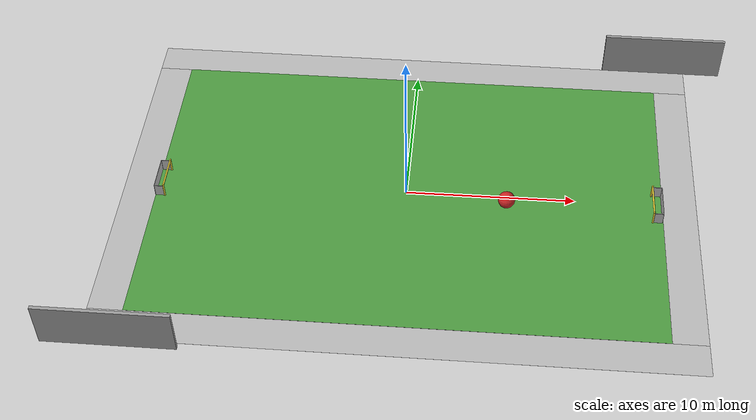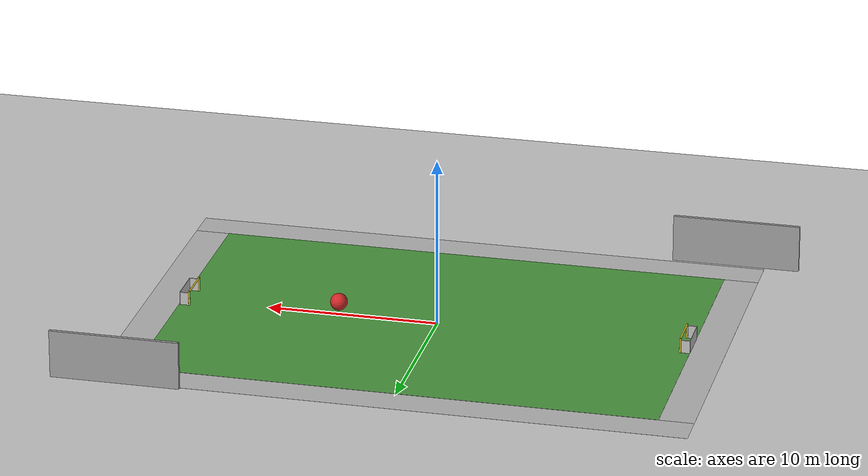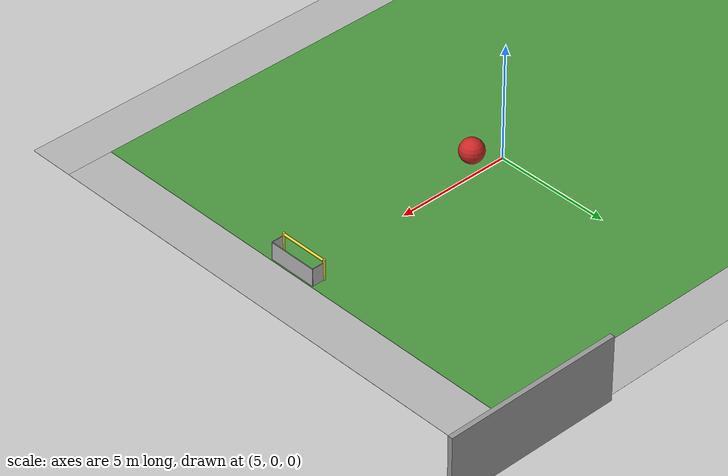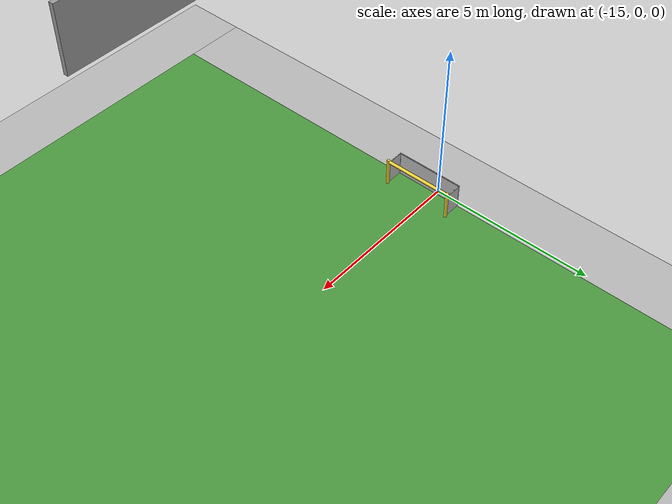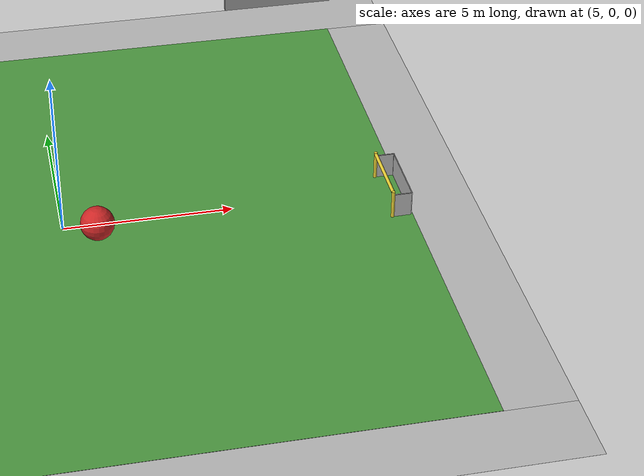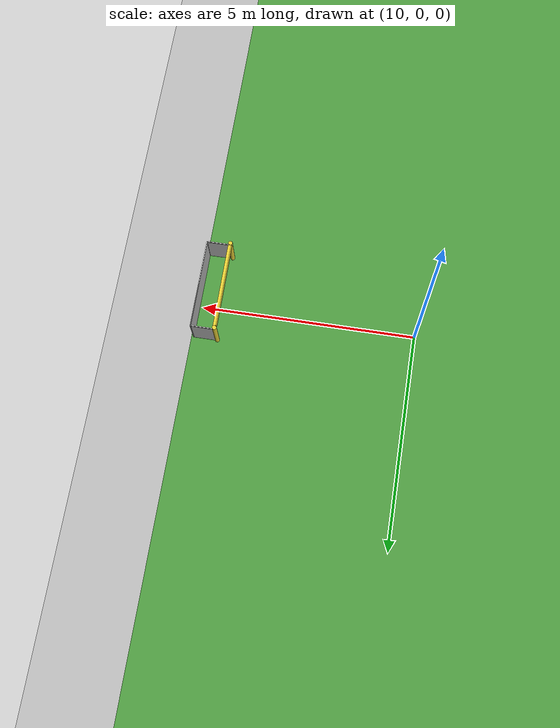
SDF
<sdf version="1.6">
 <world name="default">
  <light name="sun" type="directional">
   <pose>0 0 10 0 -0 0</pose>
   <diffuse>0.8 0.8 0.8 1</diffuse>
   <specular>0.2 0.2 0.2 1</specular>
   <attenuation>
    <range>1000</range>
    <constant>0.9</constant>
    <linear>0.01</linear>
    <quadratic>0.001</quadratic>
   </attenuation>
   <direction>-0.5 0.1 -0.9</direction>
  </light>
  <model name="ground_plane">
   <static>1</static>
   <link name="link">
    <collision name="collision">
     <geometry><plane><normal>0 0 1</normal><size>1000 1000</size></plane></geometry>
     <surface><friction><ode><mu>100</mu><mu2>50</mu2></ode></friction></surface>
    </collision>
    <visual name="visual">
     <cast_shadows>0</cast_shadows>
     <geometry><plane><normal>0 0 1</normal><size>100 100</size></plane></geometry>
     <material>
      <script><uri>file://media/materials/scripts/gazebo.material</uri><name>Gazebo/Grey</name></script>
     </material>
    </visual>
   </link>
  </model>
  <physics name="default_physics" default="0" type="ode">
   <ode>
    <solver>
     <type>quick</type>
     <iters>10</iters>
     <sor>1.3</sor>
     <use_dynamic_moi_rescaling>0</use_dynamic_moi_rescaling>
    </solver>
    <constraints>
     <cfm>0</cfm>
     <erp>0.2</erp>
     <contact_max_correcting_vel>100</contact_max_correcting_vel>
     <contact_surface_layer>0.001</contact_surface_layer>
    </constraints>
   </ode>
   <max_step_size>0.004</max_step_size>
   <real_time_factor>1</real_time_factor>
   <real_time_update_rate>250</real_time_update_rate>
  </physics>
  <gravity>0 0 -9.8066</gravity>
  <magnetic_field>6e-06 2.3e-05 -4.2e-05</magnetic_field>
  <atmosphere type="adiabatic"/>
  <scene><ambient>0.4 0.4 0.4 1</ambient><background>0.7 0.7 0.7 1</background><shadows>1</shadows></scene>
  <spherical_coordinates>
   <surface_model>EARTH_WGS84</surface_model>
   <latitude_deg>0</latitude_deg>
   <longitude_deg>0</longitude_deg>
   <elevation>0</elevation>
   <heading_deg>0</heading_deg>
  </spherical_coordinates>
  <model name="robocup_3d_field">
   <static>1</static>
   <link name="field">
    <pose>0 0 0.01 0 -0 0</pose>
    <collision name="collision">
     <geometry><plane><normal>0 0 1</normal><size>30 20</size></plane></geometry>
     <surface><friction><ode><mu>100</mu><mu2>50</mu2></ode></friction></surface>
    </collision>
    <visual name="base1">
     <pose>0 11 0.001 0 -0 0</pose>
     <cast_shadows>0</cast_shadows>
     <geometry><plane><normal>0 0 1</normal><size>34 2</size></plane></geometry>
     <material>
      <script>
       <uri>model://robocup_3Dsim_field/materials/scripts/</uri>
       <uri>model://robocup_3Dsim_field/materials/textures/</uri>
       <name>RoboCup/FieldBorder</name>
      </script>
     </material>
    </visual>
    <visual name="base2">
     <pose>0 -11 0.001 0 -0 0</pose>
     <cast_shadows>0</cast_shadows>
     <geometry><plane><normal>0 0 1</normal><size>34 2</size></plane></geometry>
     <material>
      <script>
       <uri>model://robocup_3Dsim_field/materials/scripts/</uri>
       <uri>model://robocup_3Dsim_field/materials/textures/</uri>
       <name>RoboCup/FieldBorder</name>
      </script>
     </material>
    </visual>
    <visual name="base3">
     <pose>16 0 0.001 0 -0 0</pose>
     <cast_shadows>0</cast_shadows>
     <geometry><plane><normal>0 0 1</normal><size>2 20</size></plane></geometry>
     <material>
      <script>
       <uri>model://robocup_3Dsim_field/materials/scripts/</uri>
       <uri>model://robocup_3Dsim_field/materials/textures/</uri>
       <name>RoboCup/FieldBorder</name>
      </script>
     </material>
    </visual>
    <visual name="base4">
     <pose>-16 0 0.001 0 -0 0</pose>
     <cast_shadows>0</cast_shadows>
     <geometry><plane><normal>0 0 1</normal><size>2 20</size></plane></geometry>
     <material>
      <script>
       <uri>model://robocup_3Dsim_field/materials/scripts/</uri>
       <uri>model://robocup_3Dsim_field/materials/textures/</uri>
       <name>RoboCup/FieldBorder</name>
      </script>
     </material>
    </visual>
    <visual name="carpet">
     <cast_shadows>0</cast_shadows>
     <geometry><plane><normal>0 0 1</normal><size>30 20</size></plane></geometry>
     <material>
      <script>
       <uri>model://robocup_3Dsim_field/materials/scripts/</uri>
       <uri>model://robocup_3Dsim_field/materials/textures/</uri>
       <name>RoboCup/Grass</name>
      </script>
     </material>
    </visual>
   </link>
   <pose>0.142374 -0.07827 0 0 -0 0</pose>
  </model>
  <model name="robocup_3d_goal">
   <static>1</static>
   <link name="left_post">
    <pose>0 1.05 0.45 0 -0 0</pose>
    <collision name="collision">
     <geometry><cylinder><radius>0.05</radius><length>0.9</length></cylinder></geometry>
    </collision>
    <visual name="visual">
     <geometry><cylinder><radius>0.05</radius><length>0.9</length></cylinder></geometry>
     <material>
      <script><uri>file://media/materials/scripts/gazebo.material</uri><name>Gazebo/ZincYellow</name></script>
     </material>
    </visual>
   </link>
   <link name="left_support_horiz_lower">
    <pose>0.3 1.05 0.01 0 -0 0</pose>
    <collision name="collision"><geometry><box><size>0.5 0.02 0.02</size></box></geometry></collision>
    <visual name="visual">
     <geometry><box><size>0.5 0.02 0.02</size></box></geometry>
     <material>
      <script><uri>file://media/materials/scripts/gazebo.material</uri><name>Gazebo/White</name></script>
     </material>
    </visual>
   </link>
   <link name="left_support_horiz_upper">
    <pose>0.3 1.05 0.79 0 -0 0</pose>
    <collision name="collision"><geometry><box><size>0.5 0.02 0.02</size></box></geometry></collision>
    <visual name="visual">
     <geometry><box><size>0.5 0.02 0.02</size></box></geometry>
     <material>
      <script><uri>file://media/materials/scripts/gazebo.material</uri><name>Gazebo/White</name></script>
     </material>
    </visual>
   </link>
   <link name="left_support_vertical">
    <pose>0.56 1.05 0.4 3.14159 1.57079 3.14159</pose>
    <collision name="collision"><geometry><box><size>0.8 0.02 0.02</size></box></geometry></collision>
    <visual name="visual">
     <geometry><box><size>0.8 0.02 0.02</size></box></geometry>
     <material>
      <script><uri>file://media/materials/scripts/gazebo.material</uri><name>Gazebo/White</name></script>
     </material>
    </visual>
   </link>
   <link name="right_support_horiz_lower">
    <pose>0.3 -1.05 0.01 0 -0 0</pose>
    <collision name="collision"><geometry><box><size>0.5 0.02 0.02</size></box></geometry></collision>
    <visual name="visual">
     <geometry><box><size>0.5 0.02 0.02</size></box></geometry>
     <material>
      <script><uri>file://media/materials/scripts/gazebo.material</uri><name>Gazebo/White</name></script>
     </material>
    </visual>
   </link>
   <link name="right_support_horiz_upper">
    <pose>0.3 -1.05 0.79 0 -0 0</pose>
    <collision name="collision"><geometry><box><size>0.5 0.02 0.02</size></box></geometry></collision>
    <visual name="visual">
     <geometry><box><size>0.5 0.02 0.02</size></box></geometry>
     <material>
      <script><uri>file://media/materials/scripts/gazebo.material</uri><name>Gazebo/White</name></script>
     </material>
    </visual>
   </link>
   <link name="right_support_vertical">
    <pose>0.56 -1.05 0.4 3.14159 1.57079 3.14159</pose>
    <collision name="collision"><geometry><box><size>0.8 0.02 0.02</size></box></geometry></collision>
    <visual name="visual">
     <geometry><box><size>0.8 0.02 0.02</size></box></geometry>
     <material>
      <script><uri>file://media/materials/scripts/gazebo.material</uri><name>Gazebo/White</name></script>
     </material>
    </visual>
   </link>
   <link name="center_support_horiz_lower">
    <pose>0.56 0 0.01 3.14159 1.57079 3.14159</pose>
    <collision name="collision"><geometry><box><size>0.02 2.08 0.02</size></box></geometry></collision>
    <visual name="visual">
     <geometry><box><size>0.02 2.08 0.02</size></box></geometry>
     <material>
      <script><uri>file://media/materials/scripts/gazebo.material</uri><name>Gazebo/White</name></script>
     </material>
    </visual>
   </link>
   <link name="center_support_horiz_upper">
    <pose>0.56 0 0.79 3.14159 1.57079 3.14159</pose>
    <collision name="collision"><geometry><box><size>0.02 2.08 0.02</size></box></geometry></collision>
    <visual name="visual">
     <geometry><box><size>0.02 2.08 0.02</size></box></geometry>
     <material>
      <script><uri>file://media/materials/scripts/gazebo.material</uri><name>Gazebo/White</name></script>
     </material>
    </visual>
   </link>
   <link name="right_post">
    <pose>0 -1.05 0.45 0 -0 0</pose>
    <collision name="collision">
     <geometry><cylinder><radius>0.05</radius><length>0.9</length></cylinder></geometry>
    </collision>
    <visual name="visual">
     <geometry><cylinder><radius>0.05</radius><length>0.9</length></cylinder></geometry>
     <material>
      <script><uri>file://media/materials/scripts/gazebo.material</uri><name>Gazebo/ZincYellow</name></script>
     </material>
    </visual>
   </link>
   <link name="crossbar">
    <pose>0 0 0.85 1.57 1.57 0</pose>
    <collision name="collision">
     <geometry><cylinder><radius>0.05</radius><length>2</length></cylinder></geometry>
    </collision>
    <visual name="visual">
     <geometry><cylinder><radius>0.05</radius><length>2</length></cylinder></geometry>
     <material>
      <script><uri>file://media/materials/scripts/gazebo.material</uri><name>Gazebo/ZincYellow</name></script>
     </material>
    </visual>
   </link>
   <link name="center_net">
    <pose>0.56 0 0.4 0 -0 0</pose>
    <collision name="collision"><geometry><box><size>0.01 2.1 0.8</size></box></geometry></collision>
    <visual name="visual">
     <geometry><box><size>0.01 2.1 0.8</size></box></geometry>
     <material>
      <script>
       <uri>model://robocup09_spl_field/materials/scripts/</uri>
       <uri>model://robocup09_spl_field/materials/textures/</uri>
       <name>RoboCup/Net</name>
      </script>
     </material>
    </visual>
   </link>
   <link name="left_net">
    <pose>0.3 1.05 0.4 0 -0 0</pose>
    <collision name="collision"><geometry><box><size>0.5 0.01 0.76</size></box></geometry></collision>
    <visual name="visual">
     <geometry><box><size>0.5 0.01 0.76</size></box></geometry>
     <material>
      <script>
       <uri>model://robocup09_spl_field/materials/scripts/</uri>
       <uri>model://robocup09_spl_field/materials/textures/</uri>
       <name>RoboCup/Net</name>
      </script>
     </material>
    </visual>
   </link>
   <link name="right_net">
    <pose>0.3 -1.05 0.4 0 -0 0</pose>
    <collision name="collision"><geometry><box><size>0.5 0.01 0.76</size></box></geometry></collision>
    <visual name="visual">
     <geometry><box><size>0.5 0.01 0.76</size></box></geometry>
     <material>
      <script>
       <uri>model://robocup09_spl_field/materials/scripts/</uri>
       <uri>model://robocup09_spl_field/materials/textures/</uri>
       <name>RoboCup/Net</name>
      </script>
     </material>
    </visual>
   </link>
   <pose>14.5259 -0.300535 0 0 -0 0</pose>
  </model>
  <model name="robocup_3d_goal_0">
   <static>1</static>
   <link name="left_post">
    <pose>0 1.05 0.45 0 -0 0</pose>
    <collision name="collision">
     <geometry><cylinder><radius>0.05</radius><length>0.9</length></cylinder></geometry>
    </collision>
    <visual name="visual">
     <geometry><cylinder><radius>0.05</radius><length>0.9</length></cylinder></geometry>
     <material>
      <script><uri>file://media/materials/scripts/gazebo.material</uri><name>Gazebo/ZincYellow</name></script>
     </material>
    </visual>
   </link>
   <link name="left_support_horiz_lower">
    <pose>0.3 1.05 0.01 0 -0 0</pose>
    <collision name="collision"><geometry><box><size>0.5 0.02 0.02</size></box></geometry></collision>
    <visual name="visual">
     <geometry><box><size>0.5 0.02 0.02</size></box></geometry>
     <material>
      <script><uri>file://media/materials/scripts/gazebo.material</uri><name>Gazebo/White</name></script>
     </material>
    </visual>
   </link>
   <link name="left_support_horiz_upper">
    <pose>0.3 1.05 0.79 0 -0 0</pose>
    <collision name="collision"><geometry><box><size>0.5 0.02 0.02</size></box></geometry></collision>
    <visual name="visual">
     <geometry><box><size>0.5 0.02 0.02</size></box></geometry>
     <material>
      <script><uri>file://media/materials/scripts/gazebo.material</uri><name>Gazebo/White</name></script>
     </material>
    </visual>
   </link>
   <link name="left_support_vertical">
    <pose>0.56 1.05 0.4 3.14159 1.57079 3.14159</pose>
    <collision name="collision"><geometry><box><size>0.8 0.02 0.02</size></box></geometry></collision>
    <visual name="visual">
     <geometry><box><size>0.8 0.02 0.02</size></box></geometry>
     <material>
      <script><uri>file://media/materials/scripts/gazebo.material</uri><name>Gazebo/White</name></script>
     </material>
    </visual>
   </link>
   <link name="right_support_horiz_lower">
    <pose>0.3 -1.05 0.01 0 -0 0</pose>
    <collision name="collision"><geometry><box><size>0.5 0.02 0.02</size></box></geometry></collision>
    <visual name="visual">
     <geometry><box><size>0.5 0.02 0.02</size></box></geometry>
     <material>
      <script><uri>file://media/materials/scripts/gazebo.material</uri><name>Gazebo/White</name></script>
     </material>
    </visual>
   </link>
   <link name="right_support_horiz_upper">
    <pose>0.3 -1.05 0.79 0 -0 0</pose>
    <collision name="collision"><geometry><box><size>0.5 0.02 0.02</size></box></geometry></collision>
    <visual name="visual">
     <geometry><box><size>0.5 0.02 0.02</size></box></geometry>
     <material>
      <script><uri>file://media/materials/scripts/gazebo.material</uri><name>Gazebo/White</name></script>
     </material>
    </visual>
   </link>
   <link name="right_support_vertical">
    <pose>0.56 -1.05 0.4 3.14159 1.57079 3.14159</pose>
    <collision name="collision"><geometry><box><size>0.8 0.02 0.02</size></box></geometry></collision>
    <visual name="visual">
     <geometry><box><size>0.8 0.02 0.02</size></box></geometry>
     <material>
      <script><uri>file://media/materials/scripts/gazebo.material</uri><name>Gazebo/White</name></script>
     </material>
    </visual>
   </link>
   <link name="center_support_horiz_lower">
    <pose>0.56 0 0.01 3.14159 1.57079 3.14159</pose>
    <collision name="collision"><geometry><box><size>0.02 2.08 0.02</size></box></geometry></collision>
    <visual name="visual">
     <geometry><box><size>0.02 2.08 0.02</size></box></geometry>
     <material>
      <script><uri>file://media/materials/scripts/gazebo.material</uri><name>Gazebo/White</name></script>
     </material>
    </visual>
   </link>
   <link name="center_support_horiz_upper">
    <pose>0.56 0 0.79 3.14159 1.57079 3.14159</pose>
    <collision name="collision"><geometry><box><size>0.02 2.08 0.02</size></box></geometry></collision>
    <visual name="visual">
     <geometry><box><size>0.02 2.08 0.02</size></box></geometry>
     <material>
      <script><uri>file://media/materials/scripts/gazebo.material</uri><name>Gazebo/White</name></script>
     </material>
    </visual>
   </link>
   <link name="right_post">
    <pose>0 -1.05 0.45 0 -0 0</pose>
    <collision name="collision">
     <geometry><cylinder><radius>0.05</radius><length>0.9</length></cylinder></geometry>
    </collision>
    <visual name="visual">
     <geometry><cylinder><radius>0.05</radius><length>0.9</length></cylinder></geometry>
     <material>
      <script><uri>file://media/materials/scripts/gazebo.material</uri><name>Gazebo/ZincYellow</name></script>
     </material>
    </visual>
   </link>
   <link name="crossbar">
    <pose>0 0 0.85 1.57 1.57 0</pose>
    <collision name="collision">
     <geometry><cylinder><radius>0.05</radius><length>2</length></cylinder></geometry>
    </collision>
    <visual name="visual">
     <geometry><cylinder><radius>0.05</radius><length>2</length></cylinder></geometry>
     <material>
      <script><uri>file://media/materials/scripts/gazebo.material</uri><name>Gazebo/ZincYellow</name></script>
     </material>
    </visual>
   </link>
   <link name="center_net">
    <pose>0.56 0 0.4 0 -0 0</pose>
    <collision name="collision"><geometry><box><size>0.01 2.1 0.8</size></box></geometry></collision>
    <visual name="visual">
     <geometry><box><size>0.01 2.1 0.8</size></box></geometry>
     <material>
      <script>
       <uri>model://robocup09_spl_field/materials/scripts/</uri>
       <uri>model://robocup09_spl_field/materials/textures/</uri>
       <name>RoboCup/Net</name>
      </script>
     </material>
    </visual>
   </link>
   <link name="left_net">
    <pose>0.3 1.05 0.4 0 -0 0</pose>
    <collision name="collision"><geometry><box><size>0.5 0.01 0.76</size></box></geometry></collision>
    <visual name="visual">
     <geometry><box><size>0.5 0.01 0.76</size></box></geometry>
     <material>
      <script>
       <uri>model://robocup09_spl_field/materials/scripts/</uri>
       <uri>model://robocup09_spl_field/materials/textures/</uri>
       <name>RoboCup/Net</name>
      </script>
     </material>
    </visual>
   </link>
   <link name="right_net">
    <pose>0.3 -1.05 0.4 0 -0 0</pose>
    <collision name="collision"><geometry><box><size>0.5 0.01 0.76</size></box></geometry></collision>
    <visual name="visual">
     <geometry><box><size>0.5 0.01 0.76</size></box></geometry>
     <material>
      <script>
       <uri>model://robocup09_spl_field/materials/scripts/</uri>
       <uri>model://robocup09_spl_field/materials/textures/</uri>
       <name>RoboCup/Net</name>
      </script>
     </material>
    </visual>
   </link>
   <pose>-14.3034 -0.28149 0 0 0 -3.14083</pose>
  </model>
  <model name="grey_wall">
   <static>1</static>
   <link name="link">
    <pose>0 0 1.4 0 -0 0</pose>
    <collision name="collision"><geometry><box><size>7.5 0.2 2.8</size></box></geometry></collision>
    <visual name="visual">
     <cast_shadows>0</cast_shadows>
     <geometry><box><size>7.5 0.2 2.8</size></box></geometry>
     <material>
      <script>
       <uri>model://grey_wall/materials/scripts</uri>
       <uri>model://grey_wall/materials/textures</uri>
       <name>vrc/grey_wall</name>
      </script>
     </material>
    </visual>
   </link>
   <pose>15.6542 12.0137 0 0 -0 0</pose>
  </model>
  <model name="grey_wall_clone">
   <static>1</static>
   <link name="link">
    <pose>0 0 1.4 0 -0 0</pose>
    <collision name="collision"><geometry><box><size>7.5 0.2 2.8</size></box></geometry></collision>
    <visual name="visual">
     <cast_shadows>0</cast_shadows>
     <geometry><box><size>7.5 0.2 2.8</size></box></geometry>
     <material>
      <script>
       <uri>model://grey_wall/materials/scripts</uri>
       <uri>model://grey_wall/materials/textures</uri>
       <name>vrc/grey_wall</name>
      </script>
     </material>
    </visual>
   </link>
   <pose>-15.1109 -12.375 0 0 -0 0</pose>
  </model>
  <model name="ball">
   <pose>5.9629 -0.639717 0.51 0 -0 0</pose>
   <link name="link">
    <inertial>
     <mass>0.05</mass>
     <inertia><ixx>0.005</ixx><ixy>0</ixy><ixz>0</ixz><iyy>0.005</iyy><iyz>0</iyz><izz>0.005</izz></inertia>
    </inertial>
    <collision name="collision"><geometry><sphere><radius>0.5</radius></sphere></geometry></collision>
    <visual name="visual">
     <geometry><sphere><radius>0.5</radius></sphere></geometry>
     <material>
      <script><name>Gazebo/Red</name><uri>file://media/materials/scripts/gazebo.material</uri></script>
     </material>
    </visual>
   </link>
  </model>
 </world>
</sdf>
